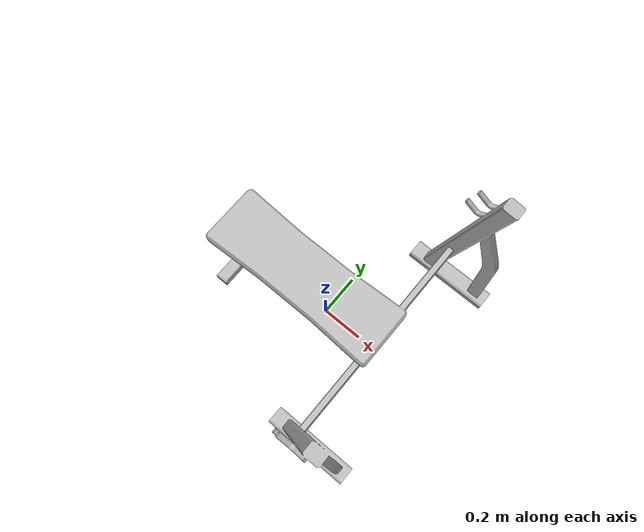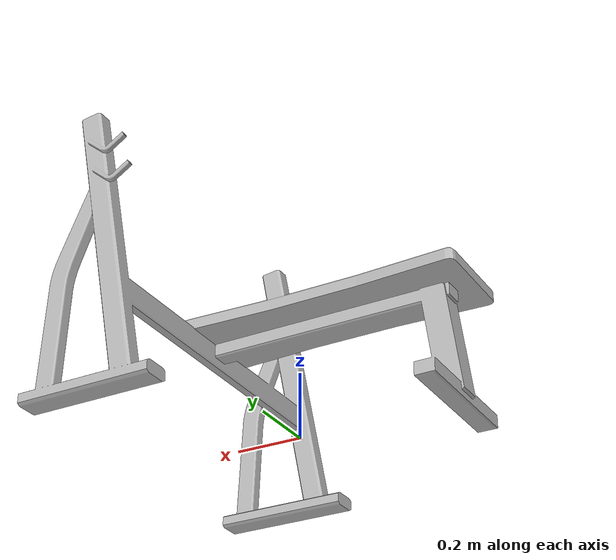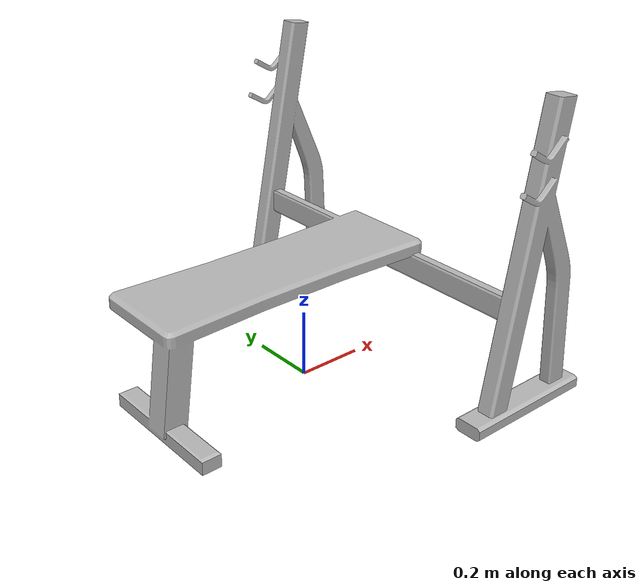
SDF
<?xml version="1.0"?>
<sdf version="1.6">
  <model name="aws_robomaker_residential_FitnessEquipment_01">
    <link name="link_FitnessEquipment_01">
      <inertial>
        <mass>80</mass>
        <inertia>
          <ixx>0.01</ixx>
          <iyy>0.01</iyy>
          <izz>0.01</izz>
          <ixy>0.0</ixy>
          <ixz>0.0</ixz>
          <iyz>0.0</iyz>
        </inertia>
      </inertial>
      <collision name="collision">
        <geometry>
          <mesh>
            <uri>model://aws_robomaker_residential_FitnessEquipment_01/meshes/aws_FitnessEquipment_01_collision.DAE</uri>
            <scale>1 1 1</scale>
          </mesh>
        </geometry>
      </collision>
      <visual name="visual">
        <geometry>
          <mesh>
            <uri>model://aws_robomaker_residential_FitnessEquipment_01/meshes/aws_FitnessEquipment_01_visual.DAE</uri>
          </mesh>
        </geometry>
        <meta>
          <layer> 1 </layer>
        </meta>
      </visual>
    </link>
    <static>1</static>
  </model>
</sdf>
